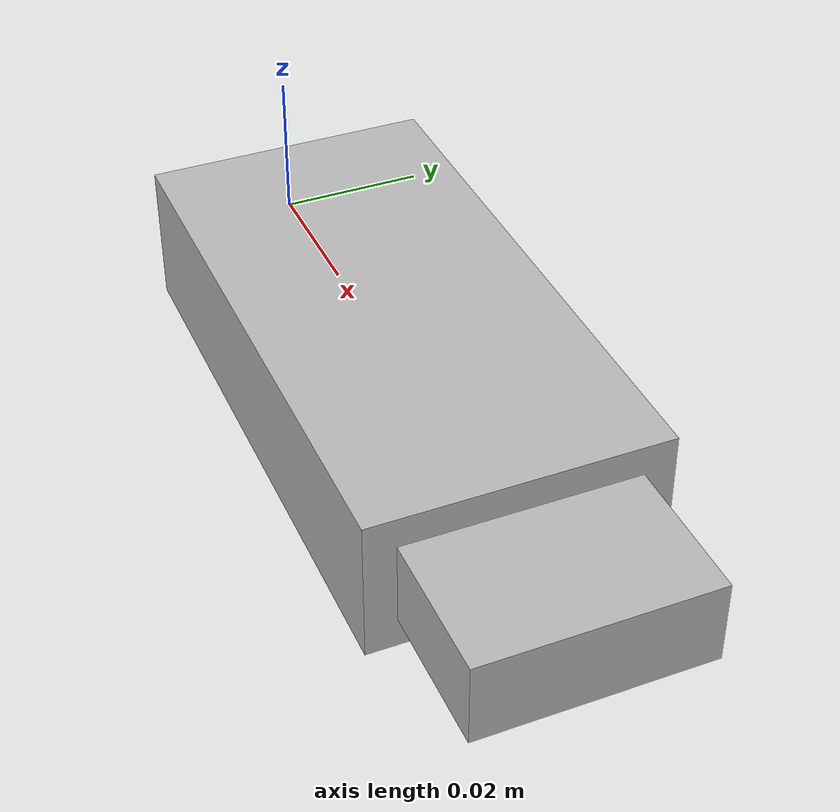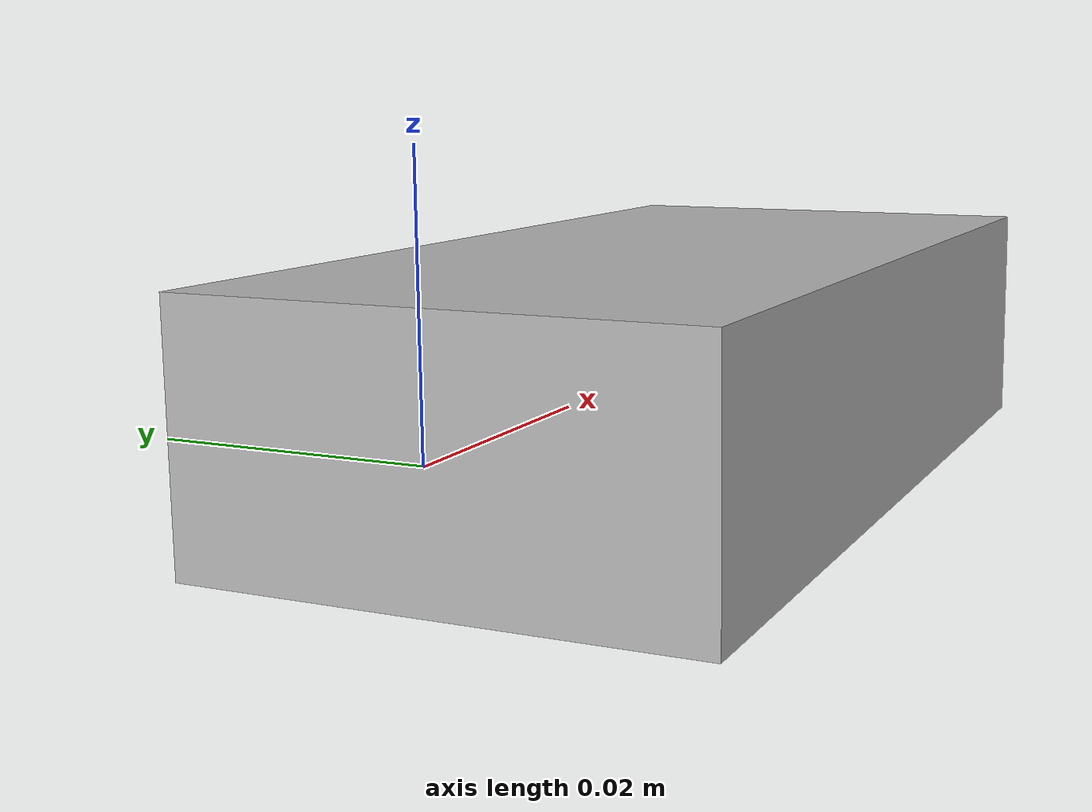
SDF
<?xml version="1.0"?>

<sdf version='1.6'>
  <model name='flash_body'>
    <link name='flash_body'>
      <pose>0 0 0 0 0 0</pose>

      <inertial>
        <pose>0.05 0 0 0 0 0</pose>
        <mass>1.0</mass>
        <inertia>
          <ixx>0.0001667</ixx>
          <ixy>0.0</ixy>
          <iyy>0.0008667</iyy>
          <ixz>0.0</ixz>
          <iyz>0.0</iyz>
          <izz>0.0009667</izz>
        </inertia>
      </inertial>

      <visual name='flash_body_visual'>
        <geometry>
          <mesh>
            <uri>model://flash_body/meshes/flash_body_final.STL</uri>
            <scale>0.001 0.001 0.001</scale>
          </mesh>
        </geometry>
      </visual>

      <collision name='flash_body_collision'>
        <geometry>
          <mesh>
            <uri>model://flash_body/meshes/flash_body_final.STL</uri>
            <scale>0.001 0.001 0.001</scale>
          </mesh>
        </geometry>
        <surface>
          <contact>
            <ode>
              <kp>10000</kp>
              <kd>1000</kd>
              <max_vel>0</max_vel>
              <min_depth>0.0</min_depth>
            </ode>
          </contact>
        </surface>
      </collision>

    </link>

  </model>
</sdf>
